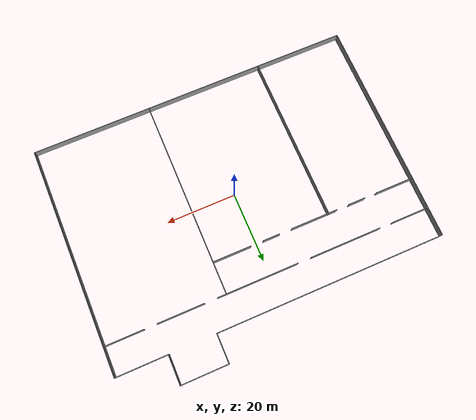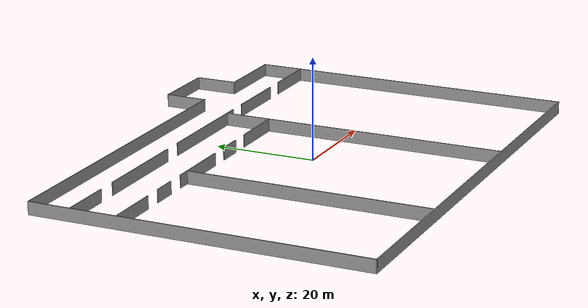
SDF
<?xml version='1.0'?>
<sdf version='1.7'>
  <model name='warehouse'>
    <link name='Wall_0'>
      <pose>-2e-06 -32.71 0 0 -0 0</pose>
      <self_collide>0</self_collide>
      <enable_wind>0</enable_wind>
      <kinematic>0</kinematic>
      <visual name='Wall_0_Visual'>
        <pose>0 0 1.25 0 -0 0</pose>
        <geometry>
          <box>
            <size>94.2 0.18 2.5</size>
          </box>
        </geometry>
        <material>
          <script>
            <uri>file://media/materials/scripts/gazebo.material</uri>
            <name>Gazebo/Grey</name>
          </script>
          <ambient>1 1 1 1</ambient>
          <shader type='pixel'/>
        </material>
        <meta>
          <layer>0</layer>
        </meta>
        <transparency>0</transparency>
        <cast_shadows>1</cast_shadows>
      </visual>
      <collision name='Wall_0_Collision'>
        <laser_retro>0</laser_retro>
        <max_contacts>10</max_contacts>
        <pose>0 0 1.25 0 -0 0</pose>
        <geometry>
          <box>
            <size>94.2 0.18 2.5</size>
          </box>
        </geometry>
        <surface>
          <friction>
            <ode>
              <mu>1</mu>
              <mu2>1</mu2>
              <fdir1>0 0 0</fdir1>
              <slip1>0</slip1>
              <slip2>0</slip2>
            </ode>
            <torsional>
              <coefficient>1</coefficient>
              <patch_radius>0</patch_radius>
              <surface_radius>0</surface_radius>
              <use_patch_radius>1</use_patch_radius>
              <ode>
                <slip>0</slip>
              </ode>
            </torsional>
          </friction>
          <bounce>
            <restitution_coefficient>0</restitution_coefficient>
            <threshold>1e+06</threshold>
          </bounce>
          <contact>
            <collide_without_contact>0</collide_without_contact>
            <collide_without_contact_bitmask>1</collide_without_contact_bitmask>
            <collide_bitmask>1</collide_bitmask>
            <ode>
              <soft_cfm>0</soft_cfm>
              <soft_erp>0.2</soft_erp>
              <kp>1e+13</kp>
              <kd>1</kd>
              <max_vel>0.01</max_vel>
              <min_depth>0</min_depth>
            </ode>
            <bullet>
              <split_impulse>1</split_impulse>
              <split_impulse_penetration_threshold>-0.01</split_impulse_penetration_threshold>
              <soft_cfm>0</soft_cfm>
              <soft_erp>0.2</soft_erp>
              <kp>1e+13</kp>
              <kd>1</kd>
            </bullet>
          </contact>
        </surface>
      </collision>
    </link>
    <link name='Wall_10'>
      <pose>7.135 15.26 0 0 -0 0</pose>
      <self_collide>0</self_collide>
      <enable_wind>0</enable_wind>
      <kinematic>0</kinematic>
      <gravity>1</gravity>
      <inertial>
        <mass>1</mass>
        <pose>0 0 0 0 -0 0</pose>
        <inertia>
          <ixx>1</ixx>
          <ixy>0</ixy>
          <ixz>0</ixz>
          <iyy>1</iyy>
          <iyz>0</iyz>
          <izz>1</izz>
        </inertia>
      </inertial>
      <visual name='Wall_10_Visual'>
        <pose>0 0 1.25 0 -0 0</pose>
        <geometry>
          <box>
            <size>10.95 0.18 2.5</size>
          </box>
        </geometry>
        <material>
          <script>
            <uri>file://media/materials/scripts/gazebo.material</uri>
            <name>Gazebo/Grey</name>
          </script>
          <ambient>1 1 1 1</ambient>
          <shader type='pixel'>
            <normal_map>__default__</normal_map>
          </shader>
          <diffuse>0.7 0.7 0.7 1</diffuse>
          <specular>0.01 0.01 0.01 1</specular>
          <emissive>0 0 0 1</emissive>
        </material>
        <meta>
          <layer>0</layer>
        </meta>
        <transparency>0</transparency>
        <cast_shadows>1</cast_shadows>
      </visual>
      <collision name='Wall_10_Collision'>
        <laser_retro>0</laser_retro>
        <max_contacts>10</max_contacts>
        <pose>0 0 1.25 0 -0 0</pose>
        <geometry>
          <box>
            <size>10.95 0.18 2.5</size>
          </box>
        </geometry>
        <surface>
          <friction>
            <ode>
              <mu>1</mu>
              <mu2>1</mu2>
              <fdir1>0 0 0</fdir1>
              <slip1>0</slip1>
              <slip2>0</slip2>
            </ode>
            <torsional>
              <coefficient>1</coefficient>
              <patch_radius>0</patch_radius>
              <surface_radius>0</surface_radius>
              <use_patch_radius>1</use_patch_radius>
              <ode>
                <slip>0</slip>
              </ode>
            </torsional>
          </friction>
          <bounce>
            <restitution_coefficient>0</restitution_coefficient>
            <threshold>1e+06</threshold>
          </bounce>
          <contact>
            <collide_without_contact>0</collide_without_contact>
            <collide_without_contact_bitmask>1</collide_without_contact_bitmask>
            <collide_bitmask>1</collide_bitmask>
            <ode>
              <soft_cfm>0</soft_cfm>
              <soft_erp>0.2</soft_erp>
              <kp>1e+13</kp>
              <kd>1</kd>
              <max_vel>0.01</max_vel>
              <min_depth>0</min_depth>
            </ode>
            <bullet>
              <split_impulse>1</split_impulse>
              <split_impulse_penetration_threshold>-0.01</split_impulse_penetration_threshold>
              <soft_cfm>0</soft_cfm>
              <soft_erp>0.2</soft_erp>
              <kp>1e+13</kp>
              <kd>1</kd>
            </bullet>
          </contact>
        </surface>
      </collision>
    </link>
    <link name='Wall_10_clone'>
      <pose>-4.34 15.26 0 0 -0 0</pose>
      <self_collide>0</self_collide>
      <enable_wind>0</enable_wind>
      <kinematic>0</kinematic>
      <gravity>1</gravity>
      <inertial>
        <mass>1</mass>
        <pose>0 0 0 0 -0 0</pose>
        <inertia>
          <ixx>1</ixx>
          <ixy>0</ixy>
          <ixz>0</ixz>
          <iyy>1</iyy>
          <iyz>0</iyz>
          <izz>1</izz>
        </inertia>
      </inertial>
      <visual name='Wall_10_Visual'>
        <pose>0 0 1.25 0 -0 0</pose>
        <geometry>
          <box>
            <size>4.9 0.18 2.5</size>
          </box>
        </geometry>
        <material>
          <script>
            <uri>file://media/materials/scripts/gazebo.material</uri>
            <name>Gazebo/Grey</name>
          </script>
          <ambient>1 1 1 1</ambient>
          <shader type='pixel'>
            <normal_map>__default__</normal_map>
          </shader>
          <diffuse>0.7 0.7 0.7 1</diffuse>
          <specular>0.01 0.01 0.01 1</specular>
          <emissive>0 0 0 1</emissive>
        </material>
        <meta>
          <layer>0</layer>
        </meta>
        <transparency>0</transparency>
        <cast_shadows>1</cast_shadows>
      </visual>
      <collision name='Wall_10_Collision'>
        <laser_retro>0</laser_retro>
        <max_contacts>10</max_contacts>
        <pose>0 0 1.25 0 -0 0</pose>
        <geometry>
          <box>
            <size>4.9 0.18 2.5</size>
          </box>
        </geometry>
        <surface>
          <friction>
            <ode>
              <mu>1</mu>
              <mu2>1</mu2>
              <fdir1>0 0 0</fdir1>
              <slip1>0</slip1>
              <slip2>0</slip2>
            </ode>
            <torsional>
              <coefficient>1</coefficient>
              <patch_radius>0</patch_radius>
              <surface_radius>0</surface_radius>
              <use_patch_radius>1</use_patch_radius>
              <ode>
                <slip>0</slip>
              </ode>
            </torsional>
          </friction>
          <bounce>
            <restitution_coefficient>0</restitution_coefficient>
            <threshold>1e+06</threshold>
          </bounce>
          <contact>
            <collide_without_contact>0</collide_without_contact>
            <collide_without_contact_bitmask>1</collide_without_contact_bitmask>
            <collide_bitmask>1</collide_bitmask>
            <ode>
              <soft_cfm>0</soft_cfm>
              <soft_erp>0.2</soft_erp>
              <kp>1e+13</kp>
              <kd>1</kd>
              <max_vel>0.01</max_vel>
              <min_depth>0</min_depth>
            </ode>
            <bullet>
              <split_impulse>1</split_impulse>
              <split_impulse_penetration_threshold>-0.01</split_impulse_penetration_threshold>
              <soft_cfm>0</soft_cfm>
              <soft_erp>0.2</soft_erp>
              <kp>1e+13</kp>
              <kd>1</kd>
            </bullet>
          </contact>
        </surface>
      </collision>
    </link>
    <link name='Wall_10_clone_0'>
      <pose>-17.155 15.26 0 0 -0 0</pose>
      <self_collide>0</self_collide>
      <enable_wind>0</enable_wind>
      <kinematic>0</kinematic>
      <gravity>1</gravity>
      <inertial>
        <mass>1</mass>
        <pose>0 0 0 0 -0 0</pose>
        <inertia>
          <ixx>1</ixx>
          <ixy>0</ixy>
          <ixz>0</ixz>
          <iyy>1</iyy>
          <iyz>0</iyz>
          <izz>1</izz>
        </inertia>
      </inertial>
      <visual name='Wall_10_Visual'>
        <pose>0 0 1.25 0 -0 0</pose>
        <geometry>
          <box>
            <size>13.63 0.18 2.5</size>
          </box>
        </geometry>
        <material>
          <script>
            <uri>file://media/materials/scripts/gazebo.material</uri>
            <name>Gazebo/Grey</name>
          </script>
          <ambient>1 1 1 1</ambient>
          <shader type='pixel'>
            <normal_map>__default__</normal_map>
          </shader>
          <diffuse>0.7 0.7 0.7 1</diffuse>
          <specular>0.01 0.01 0.01 1</specular>
          <emissive>0 0 0 1</emissive>
        </material>
        <meta>
          <layer>0</layer>
        </meta>
        <transparency>0</transparency>
        <cast_shadows>1</cast_shadows>
      </visual>
      <collision name='Wall_10_Collision'>
        <laser_retro>0</laser_retro>
        <max_contacts>10</max_contacts>
        <pose>0 0 1.25 0 -0 0</pose>
        <geometry>
          <box>
            <size>13.63 0.18 2.5</size>
          </box>
        </geometry>
        <surface>
          <friction>
            <ode>
              <mu>1</mu>
              <mu2>1</mu2>
              <fdir1>0 0 0</fdir1>
              <slip1>0</slip1>
              <slip2>0</slip2>
            </ode>
            <torsional>
              <coefficient>1</coefficient>
              <patch_radius>0</patch_radius>
              <surface_radius>0</surface_radius>
              <use_patch_radius>1</use_patch_radius>
              <ode>
                <slip>0</slip>
              </ode>
            </torsional>
          </friction>
          <bounce>
            <restitution_coefficient>0</restitution_coefficient>
            <threshold>1e+06</threshold>
          </bounce>
          <contact>
            <collide_without_contact>0</collide_without_contact>
            <collide_without_contact_bitmask>1</collide_without_contact_bitmask>
            <collide_bitmask>1</collide_bitmask>
            <ode>
              <soft_cfm>0</soft_cfm>
              <soft_erp>0.2</soft_erp>
              <kp>1e+13</kp>
              <kd>1</kd>
              <max_vel>0.01</max_vel>
              <min_depth>0</min_depth>
            </ode>
            <bullet>
              <split_impulse>1</split_impulse>
              <split_impulse_penetration_threshold>-0.01</split_impulse_penetration_threshold>
              <soft_cfm>0</soft_cfm>
              <soft_erp>0.2</soft_erp>
              <kp>1e+13</kp>
              <kd>1</kd>
            </bullet>
          </contact>
        </surface>
      </collision>
    </link>
    <link name='Wall_10_clone_1'>
      <pose>-29.995 15.26 0 0 -0 0</pose>
      <self_collide>0</self_collide>
      <enable_wind>0</enable_wind>
      <kinematic>0</kinematic>
      <gravity>1</gravity>
      <inertial>
        <mass>1</mass>
        <pose>0 0 0 0 -0 0</pose>
        <inertia>
          <ixx>1</ixx>
          <ixy>0</ixy>
          <ixz>0</ixz>
          <iyy>1</iyy>
          <iyz>0</iyz>
          <izz>1</izz>
        </inertia>
      </inertial>
      <visual name='Wall_10_Visual'>
        <pose>0 0 1.25 0 -0 0</pose>
        <geometry>
          <box>
            <size>4.9 0.18 2.5</size>
          </box>
        </geometry>
        <material>
          <script>
            <uri>file://media/materials/scripts/gazebo.material</uri>
            <name>Gazebo/Grey</name>
          </script>
          <ambient>1 1 1 1</ambient>
          <shader type='pixel'>
            <normal_map>__default__</normal_map>
          </shader>
          <diffuse>0.7 0.7 0.7 1</diffuse>
          <specular>0.01 0.01 0.01 1</specular>
          <emissive>0 0 0 1</emissive>
        </material>
        <meta>
          <layer>0</layer>
        </meta>
        <transparency>0</transparency>
        <cast_shadows>1</cast_shadows>
      </visual>
      <collision name='Wall_10_Collision'>
        <laser_retro>0</laser_retro>
        <max_contacts>10</max_contacts>
        <pose>0 0 1.25 0 -0 0</pose>
        <geometry>
          <box>
            <size>4.9 0.18 2.5</size>
          </box>
        </geometry>
        <surface>
          <friction>
            <ode>
              <mu>1</mu>
              <mu2>1</mu2>
              <fdir1>0 0 0</fdir1>
              <slip1>0</slip1>
              <slip2>0</slip2>
            </ode>
            <torsional>
              <coefficient>1</coefficient>
              <patch_radius>0</patch_radius>
              <surface_radius>0</surface_radius>
              <use_patch_radius>1</use_patch_radius>
              <ode>
                <slip>0</slip>
              </ode>
            </torsional>
          </friction>
          <bounce>
            <restitution_coefficient>0</restitution_coefficient>
            <threshold>1e+06</threshold>
          </bounce>
          <contact>
            <collide_without_contact>0</collide_without_contact>
            <collide_without_contact_bitmask>1</collide_without_contact_bitmask>
            <collide_bitmask>1</collide_bitmask>
            <ode>
              <soft_cfm>0</soft_cfm>
              <soft_erp>0.2</soft_erp>
              <kp>1e+13</kp>
              <kd>1</kd>
              <max_vel>0.01</max_vel>
              <min_depth>0</min_depth>
            </ode>
            <bullet>
              <split_impulse>1</split_impulse>
              <split_impulse_penetration_threshold>-0.01</split_impulse_penetration_threshold>
              <soft_cfm>0</soft_cfm>
              <soft_erp>0.2</soft_erp>
              <kp>1e+13</kp>
              <kd>1</kd>
            </bullet>
          </contact>
        </surface>
      </collision>
    </link>
    <link name='Wall_10_clone_2'>
      <pose>-41.445 15.26 0 0 -0 0</pose>
      <self_collide>0</self_collide>
      <enable_wind>0</enable_wind>
      <kinematic>0</kinematic>
      <gravity>1</gravity>
      <inertial>
        <mass>1</mass>
        <pose>0 0 0 0 -0 0</pose>
        <inertia>
          <ixx>1</ixx>
          <ixy>0</ixy>
          <ixz>0</ixz>
          <iyy>1</iyy>
          <iyz>0</iyz>
          <izz>1</izz>
        </inertia>
      </inertial>
      <visual name='Wall_10_Visual'>
        <pose>0 0 1.25 0 -0 0</pose>
        <geometry>
          <box>
            <size>10.95 0.18 2.5</size>
          </box>
        </geometry>
        <material>
          <script>
            <uri>file://media/materials/scripts/gazebo.material</uri>
            <name>Gazebo/Grey</name>
          </script>
          <ambient>1 1 1 1</ambient>
          <shader type='pixel'>
            <normal_map>__default__</normal_map>
          </shader>
          <diffuse>0.7 0.7 0.7 1</diffuse>
          <specular>0.01 0.01 0.01 1</specular>
          <emissive>0 0 0 1</emissive>
        </material>
        <meta>
          <layer>0</layer>
        </meta>
        <transparency>0</transparency>
        <cast_shadows>1</cast_shadows>
      </visual>
      <collision name='Wall_10_Collision'>
        <laser_retro>0</laser_retro>
        <max_contacts>10</max_contacts>
        <pose>0 0 1.25 0 -0 0</pose>
        <geometry>
          <box>
            <size>10.95 0.18 2.5</size>
          </box>
        </geometry>
        <surface>
          <friction>
            <ode>
              <mu>1</mu>
              <mu2>1</mu2>
              <fdir1>0 0 0</fdir1>
              <slip1>0</slip1>
              <slip2>0</slip2>
            </ode>
            <torsional>
              <coefficient>1</coefficient>
              <patch_radius>0</patch_radius>
              <surface_radius>0</surface_radius>
              <use_patch_radius>1</use_patch_radius>
              <ode>
                <slip>0</slip>
              </ode>
            </torsional>
          </friction>
          <bounce>
            <restitution_coefficient>0</restitution_coefficient>
            <threshold>1e+06</threshold>
          </bounce>
          <contact>
            <collide_without_contact>0</collide_without_contact>
            <collide_without_contact_bitmask>1</collide_without_contact_bitmask>
            <collide_bitmask>1</collide_bitmask>
            <ode>
              <soft_cfm>0</soft_cfm>
              <soft_erp>0.2</soft_erp>
              <kp>1e+13</kp>
              <kd>1</kd>
              <max_vel>0.01</max_vel>
              <min_depth>0</min_depth>
            </ode>
            <bullet>
              <split_impulse>1</split_impulse>
              <split_impulse_penetration_threshold>-0.01</split_impulse_penetration_threshold>
              <soft_cfm>0</soft_cfm>
              <soft_erp>0.2</soft_erp>
              <kp>1e+13</kp>
              <kd>1</kd>
            </bullet>
          </contact>
        </surface>
      </collision>
    </link>
    <link name='Wall_12'>
      <pose>12.7 -4.15 0 0 0 -1.5708</pose>
      <self_collide>0</self_collide>
      <enable_wind>0</enable_wind>
      <kinematic>0</kinematic>
      <visual name='Wall_12_Visual'>
        <pose>0 0 1.25 0 -0 0</pose>
        <geometry>
          <box>
            <size>57.27 0.15 2.5</size>
          </box>
        </geometry>
        <material>
          <script>
            <uri>file://media/materials/scripts/gazebo.material</uri>
            <name>Gazebo/Grey</name>
          </script>
          <ambient>1 1 1 1</ambient>
          <shader type='pixel'/>
        </material>
        <meta>
          <layer>0</layer>
        </meta>
        <transparency>0</transparency>
        <cast_shadows>1</cast_shadows>
      </visual>
      <collision name='Wall_12_Collision'>
        <laser_retro>0</laser_retro>
        <max_contacts>10</max_contacts>
        <pose>0 0 1.25 0 -0 0</pose>
        <geometry>
          <box>
            <size>57.27 0.15 2.5</size>
          </box>
        </geometry>
        <surface>
          <friction>
            <ode>
              <mu>1</mu>
              <mu2>1</mu2>
              <fdir1>0 0 0</fdir1>
              <slip1>0</slip1>
              <slip2>0</slip2>
            </ode>
            <torsional>
              <coefficient>1</coefficient>
              <patch_radius>0</patch_radius>
              <surface_radius>0</surface_radius>
              <use_patch_radius>1</use_patch_radius>
              <ode>
                <slip>0</slip>
              </ode>
            </torsional>
          </friction>
          <bounce>
            <restitution_coefficient>0</restitution_coefficient>
            <threshold>1e+06</threshold>
          </bounce>
          <contact>
            <collide_without_contact>0</collide_without_contact>
            <collide_without_contact_bitmask>1</collide_without_contact_bitmask>
            <collide_bitmask>1</collide_bitmask>
            <ode>
              <soft_cfm>0</soft_cfm>
              <soft_erp>0.2</soft_erp>
              <kp>1e+13</kp>
              <kd>1</kd>
              <max_vel>0.01</max_vel>
              <min_depth>0</min_depth>
            </ode>
            <bullet>
              <split_impulse>1</split_impulse>
              <split_impulse_penetration_threshold>-0.01</split_impulse_penetration_threshold>
              <soft_cfm>0</soft_cfm>
              <soft_erp>0.2</soft_erp>
              <kp>1e+13</kp>
              <kd>1</kd>
            </bullet>
          </contact>
        </surface>
      </collision>
    </link>
    <link name='Wall_14'>
      <pose>-21.38 -8.725 0 0 -0 1.5708</pose>
      <self_collide>0</self_collide>
      <enable_wind>0</enable_wind>
      <kinematic>0</kinematic>
      <visual name='Wall_14_Visual'>
        <pose>0 0 1.25 0 -0 0</pose>
        <geometry>
          <box>
            <size>48.15 0.18 2.5</size>
          </box>
        </geometry>
        <material>
          <script>
            <uri>file://media/materials/scripts/gazebo.material</uri>
            <name>Gazebo/Grey</name>
          </script>
          <ambient>1 1 1 1</ambient>
          <shader type='pixel'/>
        </material>
        <meta>
          <layer>0</layer>
        </meta>
        <transparency>0</transparency>
        <cast_shadows>1</cast_shadows>
      </visual>
      <collision name='Wall_14_Collision'>
        <laser_retro>0</laser_retro>
        <max_contacts>10</max_contacts>
        <pose>0 0 1.25 0 -0 0</pose>
        <geometry>
          <box>
            <size>48.15 0.18 2.5</size>
          </box>
        </geometry>
        <surface>
          <friction>
            <ode>
              <mu>1</mu>
              <mu2>1</mu2>
              <fdir1>0 0 0</fdir1>
              <slip1>0</slip1>
              <slip2>0</slip2>
            </ode>
            <torsional>
              <coefficient>1</coefficient>
              <patch_radius>0</patch_radius>
              <surface_radius>0</surface_radius>
              <use_patch_radius>1</use_patch_radius>
              <ode>
                <slip>0</slip>
              </ode>
            </torsional>
          </friction>
          <bounce>
            <restitution_coefficient>0</restitution_coefficient>
            <threshold>1e+06</threshold>
          </bounce>
          <contact>
            <collide_without_contact>0</collide_without_contact>
            <collide_without_contact_bitmask>1</collide_without_contact_bitmask>
            <collide_bitmask>1</collide_bitmask>
            <ode>
              <soft_cfm>0</soft_cfm>
              <soft_erp>0.2</soft_erp>
              <kp>1e+13</kp>
              <kd>1</kd>
              <max_vel>0.01</max_vel>
              <min_depth>0</min_depth>
            </ode>
            <bullet>
              <split_impulse>1</split_impulse>
              <split_impulse_penetration_threshold>-0.01</split_impulse_penetration_threshold>
              <soft_cfm>0</soft_cfm>
              <soft_erp>0.2</soft_erp>
              <kp>1e+13</kp>
              <kd>1</kd>
            </bullet>
          </contact>
        </surface>
      </collision>
    </link>
    <link name='Wall_2'>
      <pose>47.01 -2e-06 0 0 -0 1.5708</pose>
      <self_collide>0</self_collide>
      <enable_wind>0</enable_wind>
      <kinematic>0</kinematic>
      <visual name='Wall_2_Visual'>
        <pose>0 0 1.25 0 -0 0</pose>
        <geometry>
          <box>
            <size>65.6 0.18 2.5</size>
          </box>
        </geometry>
        <material>
          <script>
            <uri>file://media/materials/scripts/gazebo.material</uri>
            <name>Gazebo/Grey</name>
          </script>
          <ambient>1 1 1 1</ambient>
          <shader type='pixel'/>
        </material>
        <meta>
          <layer>0</layer>
        </meta>
        <transparency>0</transparency>
        <cast_shadows>1</cast_shadows>
      </visual>
      <collision name='Wall_2_Collision'>
        <laser_retro>0</laser_retro>
        <max_contacts>10</max_contacts>
        <pose>0 0 1.25 0 -0 0</pose>
        <geometry>
          <box>
            <size>65.6 0.18 2.5</size>
          </box>
        </geometry>
        <surface>
          <friction>
            <ode>
              <mu>1</mu>
              <mu2>1</mu2>
              <fdir1>0 0 0</fdir1>
              <slip1>0</slip1>
              <slip2>0</slip2>
            </ode>
            <torsional>
              <coefficient>1</coefficient>
              <patch_radius>0</patch_radius>
              <surface_radius>0</surface_radius>
              <use_patch_radius>1</use_patch_radius>
              <ode>
                <slip>0</slip>
              </ode>
            </torsional>
          </friction>
          <bounce>
            <restitution_coefficient>0</restitution_coefficient>
            <threshold>1e+06</threshold>
          </bounce>
          <contact>
            <collide_without_contact>0</collide_without_contact>
            <collide_without_contact_bitmask>1</collide_without_contact_bitmask>
            <collide_bitmask>1</collide_bitmask>
            <ode>
              <soft_cfm>0</soft_cfm>
              <soft_erp>0.2</soft_erp>
              <kp>1e+13</kp>
              <kd>1</kd>
              <max_vel>0.01</max_vel>
              <min_depth>0</min_depth>
            </ode>
            <bullet>
              <split_impulse>1</split_impulse>
              <split_impulse_penetration_threshold>-0.01</split_impulse_penetration_threshold>
              <soft_cfm>0</soft_cfm>
              <soft_erp>0.2</soft_erp>
              <kp>1e+13</kp>
              <kd>1</kd>
            </bullet>
          </contact>
        </surface>
      </collision>
    </link>
    <link name='Wall_2_clone'>
      <pose>32.32 36.86 0 0 -0 1.5708</pose>
      <self_collide>0</self_collide>
      <enable_wind>0</enable_wind>
      <kinematic>0</kinematic>
      <gravity>1</gravity>
      <inertial>
        <mass>1</mass>
        <pose>0 0 0 0 -0 0</pose>
        <inertia>
          <ixx>1</ixx>
          <ixy>0</ixy>
          <ixz>0</ixz>
          <iyy>1</iyy>
          <iyz>0</iyz>
          <izz>1</izz>
        </inertia>
      </inertial>
      <visual name='Wall_2_Visual'>
        <pose>0 0 1.25 0 -0 0</pose>
        <geometry>
          <box>
            <size>8.3 0.18 2.5</size>
          </box>
        </geometry>
        <material>
          <script>
            <uri>file://media/materials/scripts/gazebo.material</uri>
            <name>Gazebo/Grey</name>
          </script>
          <ambient>1 1 1 1</ambient>
          <shader type='pixel'>
            <normal_map>__default__</normal_map>
          </shader>
          <diffuse>0.7 0.7 0.7 1</diffuse>
          <specular>0.01 0.01 0.01 1</specular>
          <emissive>0 0 0 1</emissive>
        </material>
        <meta>
          <layer>0</layer>
        </meta>
        <transparency>0</transparency>
        <cast_shadows>1</cast_shadows>
      </visual>
      <collision name='Wall_2_Collision'>
        <laser_retro>0</laser_retro>
        <max_contacts>10</max_contacts>
        <pose>0 0 1.25 0 -0 0</pose>
        <geometry>
          <box>
            <size>8.3 0.18 2.5</size>
          </box>
        </geometry>
        <surface>
          <friction>
            <ode>
              <mu>1</mu>
              <mu2>1</mu2>
              <fdir1>0 0 0</fdir1>
              <slip1>0</slip1>
              <slip2>0</slip2>
            </ode>
            <torsional>
              <coefficient>1</coefficient>
              <patch_radius>0</patch_radius>
              <surface_radius>0</surface_radius>
              <use_patch_radius>1</use_patch_radius>
              <ode>
                <slip>0</slip>
              </ode>
            </torsional>
          </friction>
          <bounce>
            <restitution_coefficient>0</restitution_coefficient>
            <threshold>1e+06</threshold>
          </bounce>
          <contact>
            <collide_without_contact>0</collide_without_contact>
            <collide_without_contact_bitmask>1</collide_without_contact_bitmask>
            <collide_bitmask>1</collide_bitmask>
            <ode>
              <soft_cfm>0</soft_cfm>
              <soft_erp>0.2</soft_erp>
              <kp>1e+13</kp>
              <kd>1</kd>
              <max_vel>0.01</max_vel>
              <min_depth>0</min_depth>
            </ode>
            <bullet>
              <split_impulse>1</split_impulse>
              <split_impulse_penetration_threshold>-0.01</split_impulse_penetration_threshold>
              <soft_cfm>0</soft_cfm>
              <soft_erp>0.2</soft_erp>
              <kp>1e+13</kp>
              <kd>1</kd>
            </bullet>
          </contact>
        </surface>
      </collision>
    </link>
    <link name='Wall_2_clone_clone'>
      <pose>18.92 36.86 0 0 -0 1.5708</pose>
      <self_collide>0</self_collide>
      <enable_wind>0</enable_wind>
      <kinematic>0</kinematic>
      <gravity>1</gravity>
      <inertial>
        <mass>1</mass>
        <pose>0 0 0 0 -0 0</pose>
        <inertia>
          <ixx>1</ixx>
          <ixy>0</ixy>
          <ixz>0</ixz>
          <iyy>1</iyy>
          <iyz>0</iyz>
          <izz>1</izz>
        </inertia>
      </inertial>
      <visual name='Wall_2_Visual'>
        <pose>0 0 1.25 0 -0 0</pose>
        <geometry>
          <box>
            <size>8.3 0.18 2.5</size>
          </box>
        </geometry>
        <material>
          <script>
            <uri>file://media/materials/scripts/gazebo.material</uri>
            <name>Gazebo/Grey</name>
          </script>
          <ambient>1 1 1 1</ambient>
          <shader type='pixel'>
            <normal_map>__default__</normal_map>
          </shader>
          <diffuse>0.7 0.7 0.7 1</diffuse>
          <specular>0.01 0.01 0.01 1</specular>
          <emissive>0 0 0 1</emissive>
        </material>
        <meta>
          <layer>0</layer>
        </meta>
        <transparency>0</transparency>
        <cast_shadows>1</cast_shadows>
      </visual>
      <collision name='Wall_2_Collision'>
        <laser_retro>0</laser_retro>
        <max_contacts>10</max_contacts>
        <pose>0 0 1.25 0 -0 0</pose>
        <geometry>
          <box>
            <size>8.3 0.18 2.5</size>
          </box>
        </geometry>
        <surface>
          <friction>
            <ode>
              <mu>1</mu>
              <mu2>1</mu2>
              <fdir1>0 0 0</fdir1>
              <slip1>0</slip1>
              <slip2>0</slip2>
            </ode>
            <torsional>
              <coefficient>1</coefficient>
              <patch_radius>0</patch_radius>
              <surface_radius>0</surface_radius>
              <use_patch_radius>1</use_patch_radius>
              <ode>
                <slip>0</slip>
              </ode>
            </torsional>
          </friction>
          <bounce>
            <restitution_coefficient>0</restitution_coefficient>
            <threshold>1e+06</threshold>
          </bounce>
          <contact>
            <collide_without_contact>0</collide_without_contact>
            <collide_without_contact_bitmask>1</collide_without_contact_bitmask>
            <collide_bitmask>1</collide_bitmask>
            <ode>
              <soft_cfm>0</soft_cfm>
              <soft_erp>0.2</soft_erp>
              <kp>1e+13</kp>
              <kd>1</kd>
              <max_vel>0.01</max_vel>
              <min_depth>0</min_depth>
            </ode>
            <bullet>
              <split_impulse>1</split_impulse>
              <split_impulse_penetration_threshold>-0.01</split_impulse_penetration_threshold>
              <soft_cfm>0</soft_cfm>
              <soft_erp>0.2</soft_erp>
              <kp>1e+13</kp>
              <kd>1</kd>
            </bullet>
          </contact>
        </surface>
      </collision>
    </link>
    <link name='Wall_4'>
      <pose>-47.01 -2e-06 0 0 -0 1.5708</pose>
      <self_collide>0</self_collide>
      <enable_wind>0</enable_wind>
      <kinematic>0</kinematic>
      <visual name='Wall_4_Visual'>
        <pose>0 0 1.25 0 -0 0</pose>
        <geometry>
          <box>
            <size>65.6 0.18 2.5</size>
          </box>
        </geometry>
        <material>
          <script>
            <uri>file://media/materials/scripts/gazebo.material</uri>
            <name>Gazebo/Grey</name>
          </script>
          <ambient>1 1 1 1</ambient>
          <shader type='pixel'/>
        </material>
        <meta>
          <layer>0</layer>
        </meta>
        <transparency>0</transparency>
        <cast_shadows>1</cast_shadows>
      </visual>
      <collision name='Wall_4_Collision'>
        <laser_retro>0</laser_retro>
        <max_contacts>10</max_contacts>
        <pose>0 0 1.25 0 -0 0</pose>
        <geometry>
          <box>
            <size>65.6 0.18 2.5</size>
          </box>
        </geometry>
        <surface>
          <friction>
            <ode>
              <mu>1</mu>
              <mu2>1</mu2>
              <fdir1>0 0 0</fdir1>
              <slip1>0</slip1>
              <slip2>0</slip2>
            </ode>
            <torsional>
              <coefficient>1</coefficient>
              <patch_radius>0</patch_radius>
              <surface_radius>0</surface_radius>
              <use_patch_radius>1</use_patch_radius>
              <ode>
                <slip>0</slip>
              </ode>
            </torsional>
          </friction>
          <bounce>
            <restitution_coefficient>0</restitution_coefficient>
            <threshold>1e+06</threshold>
          </bounce>
          <contact>
            <collide_without_contact>0</collide_without_contact>
            <collide_without_contact_bitmask>1</collide_without_contact_bitmask>
            <collide_bitmask>1</collide_bitmask>
            <ode>
              <soft_cfm>0</soft_cfm>
              <soft_erp>0.2</soft_erp>
              <kp>1e+13</kp>
              <kd>1</kd>
              <max_vel>0.01</max_vel>
              <min_depth>0</min_depth>
            </ode>
            <bullet>
              <split_impulse>1</split_impulse>
              <split_impulse_penetration_threshold>-0.01</split_impulse_penetration_threshold>
              <soft_cfm>0</soft_cfm>
              <soft_erp>0.2</soft_erp>
              <kp>1e+13</kp>
              <kd>1</kd>
            </bullet>
          </contact>
        </surface>
      </collision>
    </link>
    <link name='Wall_6'>
      <pose>-13.955 32.71 0 0 -0 0</pose>
      <self_collide>0</self_collide>
      <enable_wind>0</enable_wind>
      <kinematic>0</kinematic>
      <gravity>1</gravity>
      <inertial>
        <mass>1</mass>
        <pose>0 0 0 0 -0 0</pose>
        <inertia>
          <ixx>1</ixx>
          <ixy>0</ixy>
          <ixz>0</ixz>
          <iyy>1</iyy>
          <iyz>0</iyz>
          <izz>1</izz>
        </inertia>
      </inertial>
      <visual name='Wall_6_Visual'>
        <pose>0 0 1.25 0 -0 0</pose>
        <geometry>
          <box>
            <size>65.93 0.18 2.5</size>
          </box>
        </geometry>
        <material>
          <script>
            <uri>file://media/materials/scripts/gazebo.material</uri>
            <name>Gazebo/Grey</name>
          </script>
          <ambient>1 1 1 1</ambient>
          <shader type='pixel'>
            <normal_map>__default__</normal_map>
          </shader>
          <diffuse>0.7 0.7 0.7 1</diffuse>
          <specular>0.01 0.01 0.01 1</specular>
          <emissive>0 0 0 1</emissive>
        </material>
        <meta>
          <layer>0</layer>
        </meta>
        <transparency>0</transparency>
        <cast_shadows>1</cast_shadows>
      </visual>
      <collision name='Wall_6_Collision'>
        <laser_retro>0</laser_retro>
        <max_contacts>10</max_contacts>
        <pose>0 0 1.25 0 -0 0</pose>
        <geometry>
          <box>
            <size>65.93 0.18 2.5</size>
          </box>
        </geometry>
        <surface>
          <friction>
            <ode>
              <mu>1</mu>
              <mu2>1</mu2>
              <fdir1>0 0 0</fdir1>
              <slip1>0</slip1>
              <slip2>0</slip2>
            </ode>
            <torsional>
              <coefficient>1</coefficient>
              <patch_radius>0</patch_radius>
              <surface_radius>0</surface_radius>
              <use_patch_radius>1</use_patch_radius>
              <ode>
                <slip>0</slip>
              </ode>
            </torsional>
          </friction>
          <bounce>
            <restitution_coefficient>0</restitution_coefficient>
            <threshold>1e+06</threshold>
          </bounce>
          <contact>
            <collide_without_contact>0</collide_without_contact>
            <collide_without_contact_bitmask>1</collide_without_contact_bitmask>
            <collide_bitmask>1</collide_bitmask>
            <ode>
              <soft_cfm>0</soft_cfm>
              <soft_erp>0.2</soft_erp>
              <kp>1e+13</kp>
              <kd>1</kd>
              <max_vel>0.01</max_vel>
              <min_depth>0</min_depth>
            </ode>
            <bullet>
              <split_impulse>1</split_impulse>
              <split_impulse_penetration_threshold>-0.01</split_impulse_penetration_threshold>
              <soft_cfm>0</soft_cfm>
              <soft_erp>0.2</soft_erp>
              <kp>1e+13</kp>
              <kd>1</kd>
            </bullet>
          </contact>
        </surface>
      </collision>
    </link>
    <link name='Wall_6_clone'>
      <pose>39.575 32.71 0 0 -0 0</pose>
      <self_collide>0</self_collide>
      <enable_wind>0</enable_wind>
      <kinematic>0</kinematic>
      <gravity>1</gravity>
      <inertial>
        <mass>1</mass>
        <pose>0 0 0 0 -0 0</pose>
        <inertia>
          <ixx>1</ixx>
          <ixy>0</ixy>
          <ixz>0</ixz>
          <iyy>1</iyy>
          <iyz>0</iyz>
          <izz>1</izz>
        </inertia>
      </inertial>
      <visual name='Wall_6_Visual'>
        <pose>0 0 1.25 0 -0 0</pose>
        <geometry>
          <box>
            <size>14.69 0.18 2.5</size>
          </box>
        </geometry>
        <material>
          <script>
            <uri>file://media/materials/scripts/gazebo.material</uri>
            <name>Gazebo/Grey</name>
          </script>
          <ambient>1 1 1 1</ambient>
          <shader type='pixel'>
            <normal_map>__default__</normal_map>
          </shader>
          <diffuse>0.7 0.7 0.7 1</diffuse>
          <specular>0.01 0.01 0.01 1</specular>
          <emissive>0 0 0 1</emissive>
        </material>
        <meta>
          <layer>0</layer>
        </meta>
        <transparency>0</transparency>
        <cast_shadows>1</cast_shadows>
      </visual>
      <collision name='Wall_6_Collision'>
        <laser_retro>0</laser_retro>
        <max_contacts>10</max_contacts>
        <pose>0 0 1.25 0 -0 0</pose>
        <geometry>
          <box>
            <size>14.69 0.18 2.5</size>
          </box>
        </geometry>
        <surface>
          <friction>
            <ode>
              <mu>1</mu>
              <mu2>1</mu2>
              <fdir1>0 0 0</fdir1>
              <slip1>0</slip1>
              <slip2>0</slip2>
            </ode>
            <torsional>
              <coefficient>1</coefficient>
              <patch_radius>0</patch_radius>
              <surface_radius>0</surface_radius>
              <use_patch_radius>1</use_patch_radius>
              <ode>
                <slip>0</slip>
              </ode>
            </torsional>
          </friction>
          <bounce>
            <restitution_coefficient>0</restitution_coefficient>
            <threshold>1e+06</threshold>
          </bounce>
          <contact>
            <collide_without_contact>0</collide_without_contact>
            <collide_without_contact_bitmask>1</collide_without_contact_bitmask>
            <collide_bitmask>1</collide_bitmask>
            <ode>
              <soft_cfm>0</soft_cfm>
              <soft_erp>0.2</soft_erp>
              <kp>1e+13</kp>
              <kd>1</kd>
              <max_vel>0.01</max_vel>
              <min_depth>0</min_depth>
            </ode>
            <bullet>
              <split_impulse>1</split_impulse>
              <split_impulse_penetration_threshold>-0.01</split_impulse_penetration_threshold>
              <soft_cfm>0</soft_cfm>
              <soft_erp>0.2</soft_erp>
              <kp>1e+13</kp>
              <kd>1</kd>
            </bullet>
          </contact>
        </surface>
      </collision>
    </link>
    <link name='Wall_8'>
      <pose>3.62325 24.41 0 0 -0 0</pose>
      <self_collide>0</self_collide>
      <enable_wind>0</enable_wind>
      <kinematic>0</kinematic>
      <gravity>1</gravity>
      <inertial>
        <mass>1</mass>
        <pose>0 0 0 0 -0 0</pose>
        <inertia>
          <ixx>1</ixx>
          <ixy>0</ixy>
          <ixz>0</ixz>
          <iyy>1</iyy>
          <iyz>0</iyz>
          <izz>1</izz>
        </inertia>
      </inertial>
      <visual name='Wall_8_Visual'>
        <pose>0 0 1.25 0 -0 0</pose>
        <geometry>
          <box>
            <size>23.3935 0.18 2.5</size>
          </box>
        </geometry>
        <material>
          <script>
            <uri>file://media/materials/scripts/gazebo.material</uri>
            <name>Gazebo/Grey</name>
          </script>
          <ambient>1 1 1 1</ambient>
          <shader type='pixel'>
            <normal_map>__default__</normal_map>
          </shader>
          <diffuse>0.7 0.7 0.7 1</diffuse>
          <specular>0.01 0.01 0.01 1</specular>
          <emissive>0 0 0 1</emissive>
        </material>
        <meta>
          <layer>0</layer>
        </meta>
        <transparency>0</transparency>
        <cast_shadows>1</cast_shadows>
      </visual>
      <collision name='Wall_8_Collision'>
        <laser_retro>0</laser_retro>
        <max_contacts>10</max_contacts>
        <pose>0 0 1.25 0 -0 0</pose>
        <geometry>
          <box>
            <size>23.3935 0.18 2.5</size>
          </box>
        </geometry>
        <surface>
          <friction>
            <ode>
              <mu>1</mu>
              <mu2>1</mu2>
              <fdir1>0 0 0</fdir1>
              <slip1>0</slip1>
              <slip2>0</slip2>
            </ode>
            <torsional>
              <coefficient>1</coefficient>
              <patch_radius>0</patch_radius>
              <surface_radius>0</surface_radius>
              <use_patch_radius>1</use_patch_radius>
              <ode>
                <slip>0</slip>
              </ode>
            </torsional>
          </friction>
          <bounce>
            <restitution_coefficient>0</restitution_coefficient>
            <threshold>1e+06</threshold>
          </bounce>
          <contact>
            <collide_without_contact>0</collide_without_contact>
            <collide_without_contact_bitmask>1</collide_without_contact_bitmask>
            <collide_bitmask>1</collide_bitmask>
            <ode>
              <soft_cfm>0</soft_cfm>
              <soft_erp>0.2</soft_erp>
              <kp>1e+13</kp>
              <kd>1</kd>
              <max_vel>0.01</max_vel>
              <min_depth>0</min_depth>
            </ode>
            <bullet>
              <split_impulse>1</split_impulse>
              <split_impulse_penetration_threshold>-0.01</split_impulse_penetration_threshold>
              <soft_cfm>0</soft_cfm>
              <soft_erp>0.2</soft_erp>
              <kp>1e+13</kp>
              <kd>1</kd>
            </bullet>
          </contact>
        </surface>
      </collision>
    </link>
    <link name='Wall_8_clone'>
      <pose>25.62 24.41 0 0 -0 0</pose>
      <self_collide>0</self_collide>
      <enable_wind>0</enable_wind>
      <kinematic>0</kinematic>
      <gravity>1</gravity>
      <inertial>
        <mass>1</mass>
        <pose>0 0 0 0 -0 0</pose>
        <inertia>
          <ixx>1</ixx>
          <ixy>0</ixy>
          <ixz>0</ixz>
          <iyy>1</iyy>
          <iyz>0</iyz>
          <izz>1</izz>
        </inertia>
      </inertial>
      <visual name='Wall_8_Visual'>
        <pose>0 0 1.25 0 -0 0</pose>
        <geometry>
          <box>
            <size>13.4 0.18 2.5</size>
          </box>
        </geometry>
        <material>
          <script>
            <uri>file://media/materials/scripts/gazebo.material</uri>
            <name>Gazebo/Grey</name>
          </script>
          <ambient>1 1 1 1</ambient>
          <shader type='pixel'>
            <normal_map>__default__</normal_map>
          </shader>
          <diffuse>0.7 0.7 0.7 1</diffuse>
          <specular>0.01 0.01 0.01 1</specular>
          <emissive>0 0 0 1</emissive>
        </material>
        <meta>
          <layer>0</layer>
        </meta>
        <transparency>0</transparency>
        <cast_shadows>1</cast_shadows>
      </visual>
      <collision name='Wall_8_Collision'>
        <laser_retro>0</laser_retro>
        <max_contacts>10</max_contacts>
        <pose>0 0 1.25 0 -0 0</pose>
        <geometry>
          <box>
            <size>13.4 0.18 2.5</size>
          </box>
        </geometry>
        <surface>
          <friction>
            <ode>
              <mu>1</mu>
              <mu2>1</mu2>
              <fdir1>0 0 0</fdir1>
              <slip1>0</slip1>
              <slip2>0</slip2>
            </ode>
            <torsional>
              <coefficient>1</coefficient>
              <patch_radius>0</patch_radius>
              <surface_radius>0</surface_radius>
              <use_patch_radius>1</use_patch_radius>
              <ode>
                <slip>0</slip>
              </ode>
            </torsional>
          </friction>
          <bounce>
            <restitution_coefficient>0</restitution_coefficient>
            <threshold>1e+06</threshold>
          </bounce>
          <contact>
            <collide_without_contact>0</collide_without_contact>
            <collide_without_contact_bitmask>1</collide_without_contact_bitmask>
            <collide_bitmask>1</collide_bitmask>
            <ode>
              <soft_cfm>0</soft_cfm>
              <soft_erp>0.2</soft_erp>
              <kp>1e+13</kp>
              <kd>1</kd>
              <max_vel>0.01</max_vel>
              <min_depth>0</min_depth>
            </ode>
            <bullet>
              <split_impulse>1</split_impulse>
              <split_impulse_penetration_threshold>-0.01</split_impulse_penetration_threshold>
              <soft_cfm>0</soft_cfm>
              <soft_erp>0.2</soft_erp>
              <kp>1e+13</kp>
              <kd>1</kd>
            </bullet>
          </contact>
        </surface>
      </collision>
    </link>
    <link name='Wall_8_clone_0'>
      <pose>41.42 24.41 0 0 -0 0</pose>
      <self_collide>0</self_collide>
      <enable_wind>0</enable_wind>
      <kinematic>0</kinematic>
      <gravity>1</gravity>
      <inertial>
        <mass>1</mass>
        <pose>0 0 0 0 -0 0</pose>
        <inertia>
          <ixx>1</ixx>
          <ixy>0</ixy>
          <ixz>0</ixz>
          <iyy>1</iyy>
          <iyz>0</iyz>
          <izz>1</izz>
        </inertia>
      </inertial>
      <visual name='Wall_8_Visual'>
        <pose>0 0 1.25 0 -0 0</pose>
        <geometry>
          <box>
            <size>11.05 0.18 2.5</size>
          </box>
        </geometry>
        <material>
          <script>
            <uri>file://media/materials/scripts/gazebo.material</uri>
            <name>Gazebo/Grey</name>
          </script>
          <ambient>1 1 1 1</ambient>
          <shader type='pixel'>
            <normal_map>__default__</normal_map>
          </shader>
          <diffuse>0.7 0.7 0.7 1</diffuse>
          <specular>0.01 0.01 0.01 1</specular>
          <emissive>0 0 0 1</emissive>
        </material>
        <meta>
          <layer>0</layer>
        </meta>
        <transparency>0</transparency>
        <cast_shadows>1</cast_shadows>
      </visual>
      <collision name='Wall_8_Collision'>
        <laser_retro>0</laser_retro>
        <max_contacts>10</max_contacts>
        <pose>0 0 1.25 0 -0 0</pose>
        <geometry>
          <box>
            <size>11.05 0.18 2.5</size>
          </box>
        </geometry>
        <surface>
          <friction>
            <ode>
              <mu>1</mu>
              <mu2>1</mu2>
              <fdir1>0 0 0</fdir1>
              <slip1>0</slip1>
              <slip2>0</slip2>
            </ode>
            <torsional>
              <coefficient>1</coefficient>
              <patch_radius>0</patch_radius>
              <surface_radius>0</surface_radius>
              <use_patch_radius>1</use_patch_radius>
              <ode>
                <slip>0</slip>
              </ode>
            </torsional>
          </friction>
          <bounce>
            <restitution_coefficient>0</restitution_coefficient>
            <threshold>1e+06</threshold>
          </bounce>
          <contact>
            <collide_without_contact>0</collide_without_contact>
            <collide_without_contact_bitmask>1</collide_without_contact_bitmask>
            <collide_bitmask>1</collide_bitmask>
            <ode>
              <soft_cfm>0</soft_cfm>
              <soft_erp>0.2</soft_erp>
              <kp>1e+13</kp>
              <kd>1</kd>
              <max_vel>0.01</max_vel>
              <min_depth>0</min_depth>
            </ode>
            <bullet>
              <split_impulse>1</split_impulse>
              <split_impulse_penetration_threshold>-0.01</split_impulse_penetration_threshold>
              <soft_cfm>0</soft_cfm>
              <soft_erp>0.2</soft_erp>
              <kp>1e+13</kp>
              <kd>1</kd>
            </bullet>
          </contact>
        </surface>
      </collision>
    </link>
    <link name='Wall_8_clone_1'>
      <pose>-22.181 24.41 0 0 -0 0</pose>
      <self_collide>0</self_collide>
      <enable_wind>0</enable_wind>
      <kinematic>0</kinematic>
      <gravity>1</gravity>
      <inertial>
        <mass>1</mass>
        <pose>0 0 0 0 -0 0</pose>
        <inertia>
          <ixx>1</ixx>
          <ixy>0</ixy>
          <ixz>0</ixz>
          <iyy>1</iyy>
          <iyz>0</iyz>
          <izz>1</izz>
        </inertia>
      </inertial>
      <visual name='Wall_8_Visual'>
        <pose>0 0 1.25 0 -0 0</pose>
        <geometry>
          <box>
            <size>20.535 0.18 2.5</size>
          </box>
        </geometry>
        <material>
          <script>
            <uri>file://media/materials/scripts/gazebo.material</uri>
            <name>Gazebo/Grey</name>
          </script>
          <ambient>1 1 1 1</ambient>
          <shader type='pixel'>
            <normal_map>__default__</normal_map>
          </shader>
          <diffuse>0.7 0.7 0.7 1</diffuse>
          <specular>0.01 0.01 0.01 1</specular>
          <emissive>0 0 0 1</emissive>
        </material>
        <meta>
          <layer>0</layer>
        </meta>
        <transparency>0</transparency>
        <cast_shadows>1</cast_shadows>
      </visual>
      <collision name='Wall_8_Collision'>
        <laser_retro>0</laser_retro>
        <max_contacts>10</max_contacts>
        <pose>0 0 1.25 0 -0 0</pose>
        <geometry>
          <box>
            <size>20.535 0.18 2.5</size>
          </box>
        </geometry>
        <surface>
          <friction>
            <ode>
              <mu>1</mu>
              <mu2>1</mu2>
              <fdir1>0 0 0</fdir1>
              <slip1>0</slip1>
              <slip2>0</slip2>
            </ode>
            <torsional>
              <coefficient>1</coefficient>
              <patch_radius>0</patch_radius>
              <surface_radius>0</surface_radius>
              <use_patch_radius>1</use_patch_radius>
              <ode>
                <slip>0</slip>
              </ode>
            </torsional>
          </friction>
          <bounce>
            <restitution_coefficient>0</restitution_coefficient>
            <threshold>1e+06</threshold>
          </bounce>
          <contact>
            <collide_without_contact>0</collide_without_contact>
            <collide_without_contact_bitmask>1</collide_without_contact_bitmask>
            <collide_bitmask>1</collide_bitmask>
            <ode>
              <soft_cfm>0</soft_cfm>
              <soft_erp>0.2</soft_erp>
              <kp>1e+13</kp>
              <kd>1</kd>
              <max_vel>0.01</max_vel>
              <min_depth>0</min_depth>
            </ode>
            <bullet>
              <split_impulse>1</split_impulse>
              <split_impulse_penetration_threshold>-0.01</split_impulse_penetration_threshold>
              <soft_cfm>0</soft_cfm>
              <soft_erp>0.2</soft_erp>
              <kp>1e+13</kp>
              <kd>1</kd>
            </bullet>
          </contact>
        </surface>
      </collision>
    </link>
    <link name='Wall_8_clone_2'>
      <pose>-41.6475 24.41 0 0 -0 0</pose>
      <self_collide>0</self_collide>
      <enable_wind>0</enable_wind>
      <kinematic>0</kinematic>
      <gravity>1</gravity>
      <inertial>
        <mass>1</mass>
        <pose>0 0 0 0 -0 0</pose>
        <inertia>
          <ixx>1</ixx>
          <ixy>0</ixy>
          <ixz>0</ixz>
          <iyy>1</iyy>
          <iyz>0</iyz>
          <izz>1</izz>
        </inertia>
      </inertial>
      <visual name='Wall_8_Visual'>
        <pose>0 0 1.25 0 -0 0</pose>
        <geometry>
          <box>
            <size>10.545 0.18 2.5</size>
          </box>
        </geometry>
        <material>
          <script>
            <uri>file://media/materials/scripts/gazebo.material</uri>
            <name>Gazebo/Grey</name>
          </script>
          <ambient>1 1 1 1</ambient>
          <shader type='pixel'>
            <normal_map>__default__</normal_map>
          </shader>
          <diffuse>0.7 0.7 0.7 1</diffuse>
          <specular>0.01 0.01 0.01 1</specular>
          <emissive>0 0 0 1</emissive>
        </material>
        <meta>
          <layer>0</layer>
        </meta>
        <transparency>0</transparency>
        <cast_shadows>1</cast_shadows>
      </visual>
      <collision name='Wall_8_Collision'>
        <laser_retro>0</laser_retro>
        <max_contacts>10</max_contacts>
        <pose>0 0 1.25 0 -0 0</pose>
        <geometry>
          <box>
            <size>10.545 0.18 2.5</size>
          </box>
        </geometry>
        <surface>
          <friction>
            <ode>
              <mu>1</mu>
              <mu2>1</mu2>
              <fdir1>0 0 0</fdir1>
              <slip1>0</slip1>
              <slip2>0</slip2>
            </ode>
            <torsional>
              <coefficient>1</coefficient>
              <patch_radius>0</patch_radius>
              <surface_radius>0</surface_radius>
              <use_patch_radius>1</use_patch_radius>
              <ode>
                <slip>0</slip>
              </ode>
            </torsional>
          </friction>
          <bounce>
            <restitution_coefficient>0</restitution_coefficient>
            <threshold>1e+06</threshold>
          </bounce>
          <contact>
            <collide_without_contact>0</collide_without_contact>
            <collide_without_contact_bitmask>1</collide_without_contact_bitmask>
            <collide_bitmask>1</collide_bitmask>
            <ode>
              <soft_cfm>0</soft_cfm>
              <soft_erp>0.2</soft_erp>
              <kp>1e+13</kp>
              <kd>1</kd>
              <max_vel>0.01</max_vel>
              <min_depth>0</min_depth>
            </ode>
            <bullet>
              <split_impulse>1</split_impulse>
              <split_impulse_penetration_threshold>-0.01</split_impulse_penetration_threshold>
              <soft_cfm>0</soft_cfm>
              <soft_erp>0.2</soft_erp>
              <kp>1e+13</kp>
              <kd>1</kd>
            </bullet>
          </contact>
        </surface>
      </collision>
    </link>
    <link name='Wall_8_clone_clone'>
      <pose>25.62 41.01 0 0 -0 0</pose>
      <self_collide>0</self_collide>
      <enable_wind>0</enable_wind>
      <kinematic>0</kinematic>
      <gravity>1</gravity>
      <inertial>
        <mass>1</mass>
        <pose>0 0 0 0 -0 0</pose>
        <inertia>
          <ixx>1</ixx>
          <ixy>0</ixy>
          <ixz>0</ixz>
          <iyy>1</iyy>
          <iyz>0</iyz>
          <izz>1</izz>
        </inertia>
      </inertial>
      <visual name='Wall_8_Visual'>
        <pose>0 0 1.25 0 -0 0</pose>
        <geometry>
          <box>
            <size>13.4 0.18 2.5</size>
          </box>
        </geometry>
        <material>
          <script>
            <uri>file://media/materials/scripts/gazebo.material</uri>
            <name>Gazebo/Grey</name>
          </script>
          <ambient>1 1 1 1</ambient>
          <shader type='pixel'>
            <normal_map>__default__</normal_map>
          </shader>
          <diffuse>0.7 0.7 0.7 1</diffuse>
          <specular>0.01 0.01 0.01 1</specular>
          <emissive>0 0 0 1</emissive>
        </material>
        <meta>
          <layer>0</layer>
        </meta>
        <transparency>0</transparency>
        <cast_shadows>1</cast_shadows>
      </visual>
      <collision name='Wall_8_Collision'>
        <laser_retro>0</laser_retro>
        <max_contacts>10</max_contacts>
        <pose>0 0 1.25 0 -0 0</pose>
        <geometry>
          <box>
            <size>13.4 0.18 2.5</size>
          </box>
        </geometry>
        <surface>
          <friction>
            <ode>
              <mu>1</mu>
              <mu2>1</mu2>
              <fdir1>0 0 0</fdir1>
              <slip1>0</slip1>
              <slip2>0</slip2>
            </ode>
            <torsional>
              <coefficient>1</coefficient>
              <patch_radius>0</patch_radius>
              <surface_radius>0</surface_radius>
              <use_patch_radius>1</use_patch_radius>
              <ode>
                <slip>0</slip>
              </ode>
            </torsional>
          </friction>
          <bounce>
            <restitution_coefficient>0</restitution_coefficient>
            <threshold>1e+06</threshold>
          </bounce>
          <contact>
            <collide_without_contact>0</collide_without_contact>
            <collide_without_contact_bitmask>1</collide_without_contact_bitmask>
            <collide_bitmask>1</collide_bitmask>
            <ode>
              <soft_cfm>0</soft_cfm>
              <soft_erp>0.2</soft_erp>
              <kp>1e+13</kp>
              <kd>1</kd>
              <max_vel>0.01</max_vel>
              <min_depth>0</min_depth>
            </ode>
            <bullet>
              <split_impulse>1</split_impulse>
              <split_impulse_penetration_threshold>-0.01</split_impulse_penetration_threshold>
              <soft_cfm>0</soft_cfm>
              <soft_erp>0.2</soft_erp>
              <kp>1e+13</kp>
              <kd>1</kd>
            </bullet>
          </contact>
        </surface>
      </collision>
    </link>
    <static>1</static>
    <allow_auto_disable>1</allow_auto_disable>
  </model>
</sdf>
